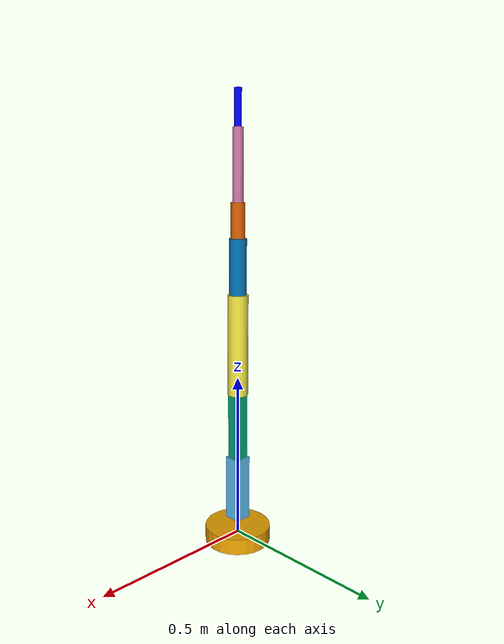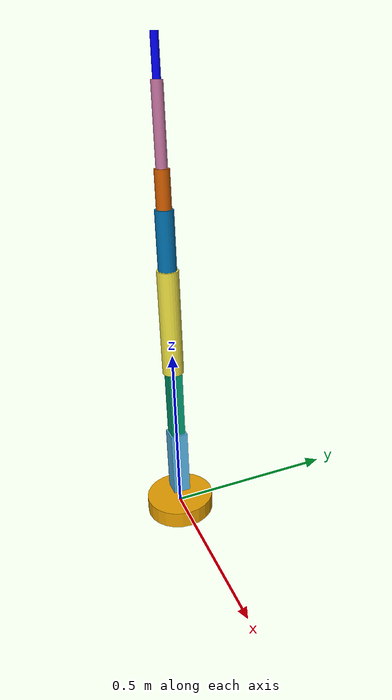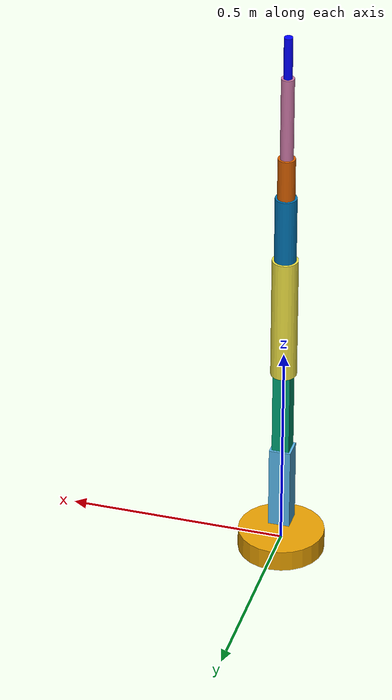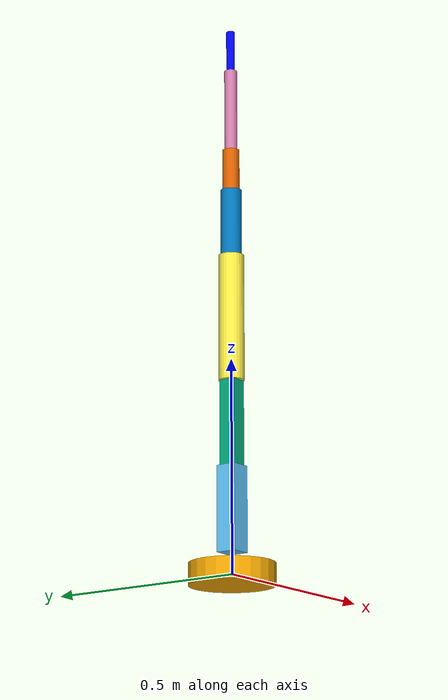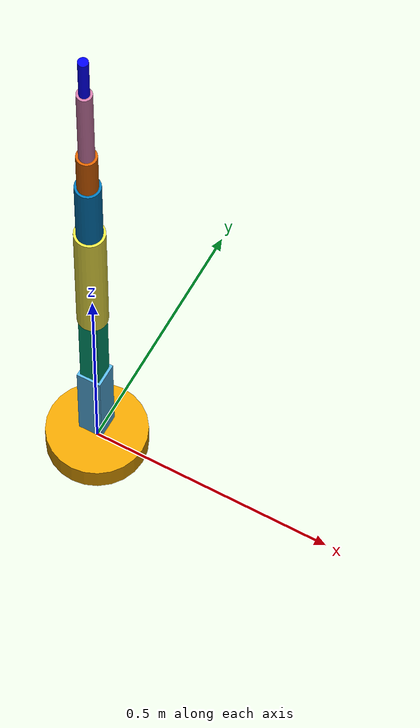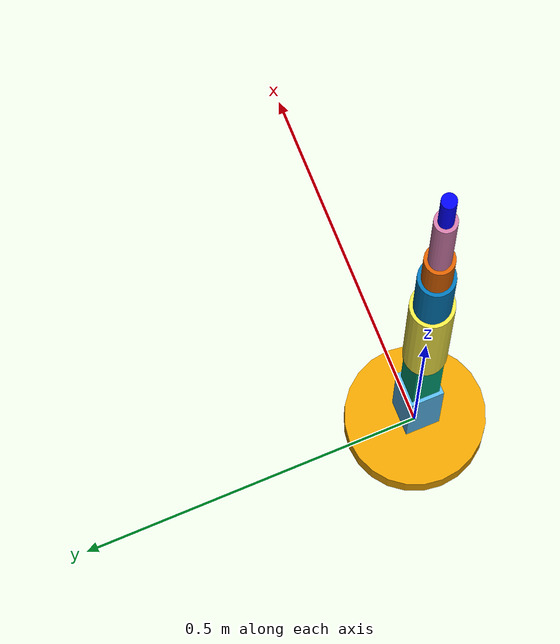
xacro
<?xml version="1.0"?>
<robot xmlns:xacro="http://www.ros.org/wiki/xacro" name="neuro_arm">
    <xacro:arg name="initial_positions_file" default="initial_positions.yaml" />

    <!-- Import neuro_arm urdf file -->
    <xacro:include filename="$(find neuro_arm)/urdf/NeuroArm.urdf" />

    <!-- Import control_xacro -->
    <xacro:include filename="neuro_arm.ros2_control.xacro" />

    <xacro:neuro_arm_ros2_control name="FakeSystem" initial_positions_file="$(arg initial_positions_file)"/>

</robot>

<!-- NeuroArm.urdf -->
<robot name="neuro_arm">

  <!-- BASE LINK -->
  <link name="base_link">
    <visual>
      <geometry>
        <cylinder radius="0.10" length="0.05"/>
      </geometry>
    </visual>
    <collision>
      <geometry>
        <cylinder radius="0.10" length="0.05"/>
      </geometry>
    </collision>
  </link>

  <!-- JOINT 1: BASE ROTATION (YAW) -->
  <joint name="joint_base_yaw" type="revolute">
    <parent link="base_link"/>
    <child link="link_shoulder_pitch"/>
    <origin xyz="0 0 0.05" rpy="0 0 0"/>
    <axis xyz="0 0 1"/>
    <limit lower="-3.14" upper="3.14" effort="50" velocity="1.0"/>
  </joint>

  <!-- LINK FOR SHOULDER PITCH -->
  <link name="link_shoulder_pitch">
    <visual>
      <origin xyz="0 0 0.10" rpy="0 0 0"/>
      <geometry>
        <box size="0.05 0.05 0.20"/>
      </geometry>
    </visual>
    <collision>
      <geometry>
        <box size="0.05 0.05 0.20"/>
      </geometry>
    </collision>
  </link>

  <!-- JOINT 2: SHOULDER PITCH -->
  <joint name="joint_shoulder_pitch" type="revolute">
    <parent link="link_shoulder_pitch"/>
    <child link="link_shoulder_roll"/>
    <origin xyz="0 0 0.20" rpy="0 0 0"/>
    <axis xyz="0 1 0"/>
    <limit lower="-1.57" upper="1.57" effort="50" velocity="1.0"/>
  </joint>

  <!-- LINK FOR SHOULDER ROLL -->
  <link name="link_shoulder_roll">
    <visual>
      <origin xyz="0 0 0.10" rpy="0 0 0"/>
      <geometry>
        <box size="0.04 0.04 0.20"/>
      </geometry>
    </visual>
    <collision>
      <geometry>
        <box size="0.04 0.04 0.20"/>
      </geometry>
    </collision>
  </link>

  <!-- JOINT 3: SHOULDER ROLL -->
  <joint name="joint_shoulder_roll" type="revolute">
    <parent link="link_shoulder_roll"/>
    <child link="link_elbow_pitch"/>
    <origin xyz="0 0 0.20" rpy="0 0 0"/>
    <axis xyz="1 0 0"/>
    <limit lower="-1.2" upper="1.2" effort="40" velocity="1.0"/>
  </joint>

  <!-- LINK FOR ELBOW PITCH -->
  <link name="link_elbow_pitch">
    <visual>
      <origin xyz="0 0 0.15" rpy="0 0 0"/>
      <geometry>
        <cylinder radius="0.03" length="0.30"/>
      </geometry>
    </visual>
    <collision>
      <geometry>
        <cylinder radius="0.03" length="0.30"/>
      </geometry>
    </collision>
  </link>

  <!-- JOINT 4: ELBOW PITCH -->
  <joint name="joint_elbow_pitch" type="revolute">
    <parent link="link_elbow_pitch"/>
    <child link="link_wrist_pitch"/>
    <origin xyz="0 0 0.30" rpy="0 0 0"/>
    <axis xyz="0 1 0"/>
    <limit lower="-1.57" upper="1.57" effort="30" velocity="1.0"/>
  </joint>

  <!-- LINK FOR WRIST PITCH -->
  <link name="link_wrist_pitch">
    <visual>
      <origin xyz="0 0 0.08" rpy="0 0 0"/>
      <geometry>
        <cylinder radius="0.025" length="0.16"/>
      </geometry>
    </visual>
    <collision>
      <geometry>
        <cylinder radius="0.025" length="0.16"/>
      </geometry>
    </collision>
  </link>

  <!-- JOINT 5: WRIST PITCH -->
  <joint name="joint_wrist_pitch" type="revolute">
    <parent link="link_wrist_pitch"/>
    <child link="link_wrist_roll"/>
    <origin xyz="0 0 0.16" rpy="0 0 0"/>
    <axis xyz="1 0 0"/>
    <limit lower="-1.57" upper="1.57" effort="20" velocity="1.0"/>
  </joint>

  <!-- LINK FOR WRIST ROLL/YAW -->
  <link name="link_wrist_roll">
    <visual>
      <origin xyz="0 0 0.05" rpy="0 0 0"/>
      <geometry>
        <cylinder radius="0.02" length="0.10"/>
      </geometry>
    </visual>
    <collision>
      <geometry>
        <cylinder radius="0.02" length="0.10"/>
      </geometry>
    </collision>
  </link>

  <!-- JOINT 6: WRIST ROLL -->
  <joint name="joint_wrist_roll" type="revolute">
    <parent link="link_wrist_roll"/>
    <child link="link_insertion"/>
    <origin xyz="0 0 0.10" rpy="0 0 0"/>
    <axis xyz="0 0 1"/>
    <limit lower="-3.14" upper="3.14" effort="15" velocity="1.0"/>
  </joint>

  <!-- LINK FOR INSERTION (PRISMATIC) -->
  <link name="link_insertion">
    <visual>
      <origin xyz="0 0 0.10" rpy="0 0 0"/>
      <geometry>
        <cylinder radius="0.015" length="0.20"/>
      </geometry>
    </visual>
    <collision>
      <geometry>
        <cylinder radius="0.015" length="0.20"/>
      </geometry>
    </collision>
  </link>

  <!-- JOINT 7: INSERTION (PRISMATIC) -->
  <joint name="joint_tool_insertion" type="prismatic">
    <parent link="link_insertion"/>
    <child link="end_effector_tool"/>
    <origin xyz="0 0 0.20" rpy="0 0 0"/>
    <axis xyz="0 0 1"/>
    <limit lower="0.00" upper="0.10" effort="10" velocity="0.02"/>
  </joint>

  <!-- END‐EFFECTOR (TOOLS TIP) -->
  <link name="end_effector_tool">
    <visual>
      <origin xyz="0 0 0.05" rpy="0 0 0"/>
      <geometry>
        <cylinder radius="0.01" length="0.10"/>
      </geometry>
      <material name="blue">
        <color rgba="0 0 1 1"/>
      </material>
    </visual>
    <collision>
      <geometry>
        <cylinder radius="0.01" length="0.10"/>
      </geometry>
    </collision>
  </link>

</robot>
